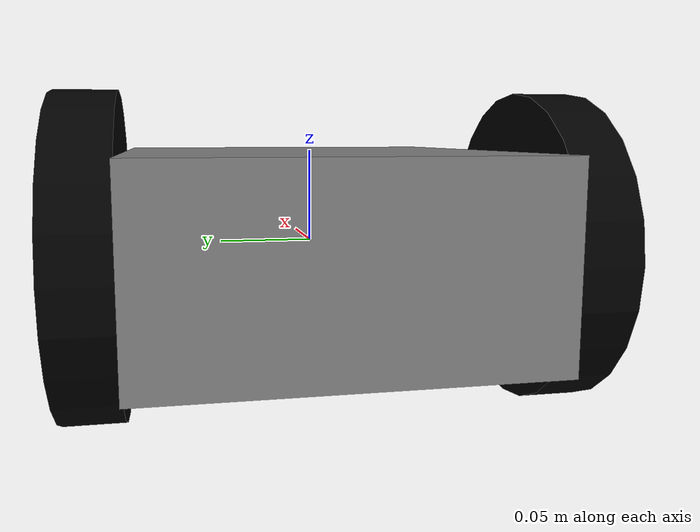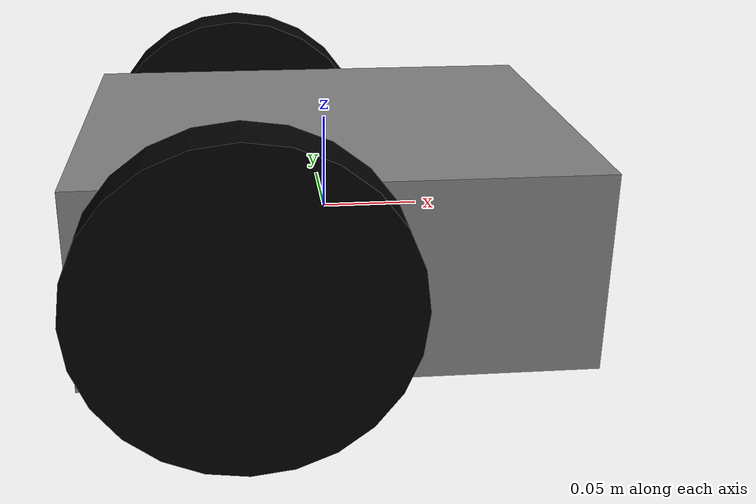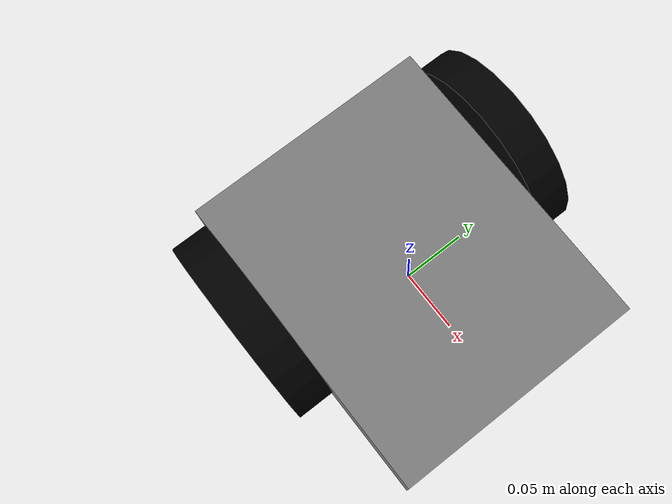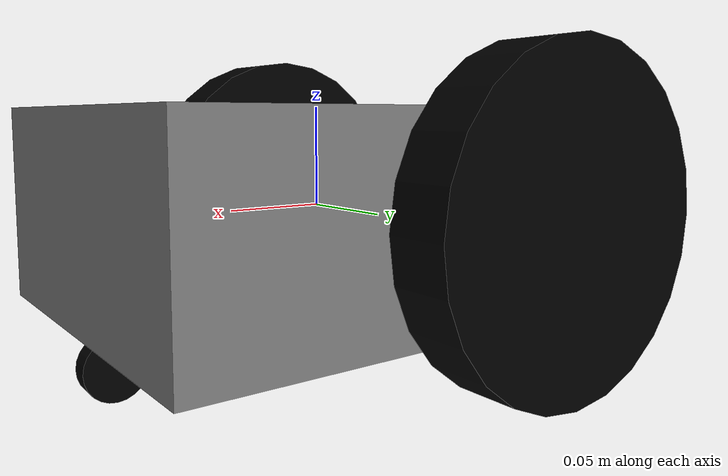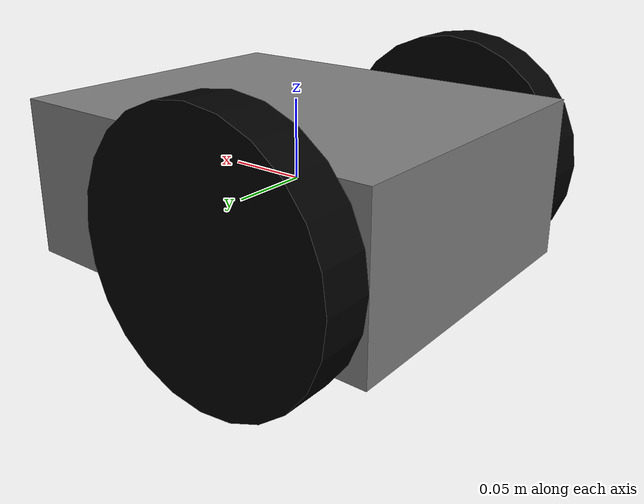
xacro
<?xml version="1.0"?>
<robot xmlns:xacro="http://www.ros.org/wiki/xacro" name="two_wheel_robot_with_caster">

  <!-- Parameter Definitions -->

  <xacro:property name="base_length"     value="0.25"/>
  <xacro:property name="base_width"      value="0.2"/>
  <xacro:property name="base_height"     value="0.1"/>

  <xacro:property name="wheel_radius"    value="0.08"/>
  <xacro:property name="wheel_width"     value="0.03"/>
  <xacro:property name="wheel_x"       value="${-base_length/2 + wheel_radius}"/> <!-- Align the edge of base_link with the edge of the caster -->
  <xacro:property name="wheel_y"       value="${base_width/2 + wheel_width/2}"/> <!-- Position the wheel directly beside base_link -->
  <xacro:property name="wheel_z"       value="0.0"/> <!-- Position the wheel directly above base_link -->

  <xacro:property name="caster_radius"   value="${(wheel_radius - base_height/2)/2}"/> <!-- Fit snugly in the gap below base_link -->
  <xacro:property name="caster_width"   value="0.01"/>
  <xacro:property name="caster_x" value="${base_length/2 - caster_radius}"/> <!-- Align the edge of base_link with the edge of the caster -->
  <xacro:property name="caster_y" value="0"/>
  <xacro:property name="caster_z" value="${- base_height/2 - caster_radius}"/>  <!-- Fit snugly in the gap below base_link -->

  <!-- Material Definitions -->
  <material name="gray">
    <color rgba="0.5 0.5 0.5 1.0"/>
  </material>
  <material name="black">
    <color rgba="0.0 0.0 0.0 1.0"/>
  </material>
  <material name="red">
    <color rgba="1.0 0.0 0.0 1.0"/>
  </material>

  <!-- Link Definitions -->

  <!-- Base Link -->
  <link name="base_link">
    <visual>
      <geometry>
        <box size="${base_length} ${base_width} ${base_height}"/>
      </geometry>
      <material name="gray"/>
    </visual>
    <collision>
      <geometry>
        <box size="${base_length} ${base_width} ${base_height}"/>
      </geometry>
    </collision>
    <inertial>
      <mass value="0.5"/>
      <origin xyz="0 0 ${-base_height/2}" rpy="0 0 0"/>
      <inertia ixx="0.001" ixy="0.0" ixz="0.0"
               iyy="0.001" iyz="0.0"
               izz="0.001"/>
    </inertial>
  </link>

  <!-- Left Wheel Link -->
  <link name="left_wheel_link">
    <visual>
      <origin xyz="0 0 0" rpy="-1.5708 0 0"/>
      <geometry>
        <cylinder length="${wheel_width}" radius="${wheel_radius}"/>
      </geometry>
      <material name="black"/>
    </visual>
    <collision>
      <origin xyz="0 0 0" rpy="-1.5708 0 0"/>
      <geometry>
        <cylinder length="${wheel_width}" radius="${wheel_radius}"/>
      </geometry>
    </collision>
    <inertial>
      <mass value="0.001"/>
      <origin xyz="0 0 0" rpy="0 0 0"/>
      <inertia ixx="1.1175580e-05" ixy="-4.2369783e-11" ixz="-5.9381719e-09" iyy="1.1192413e-05" iyz="-1.4400107e-11" izz="2.0712558e-05" />
    </inertial>
  </link>

  <!-- Right Wheel Link -->
  <link name="right_wheel_link">
    <visual>
      <origin xyz="0 0 0" rpy="1.5708 0 0"/>
      <geometry>
        <cylinder length="${wheel_width}" radius="${wheel_radius}"/>
      </geometry>
      <material name="black"/>
    </visual>
    <collision>
      <origin xyz="0 0 0" rpy="1.5708 0 0"/>
      <geometry>
        <cylinder length="${wheel_width}" radius="${wheel_radius}"/>
      </geometry>
    </collision>
    <inertial>
      <mass value="0.001"/>
      <origin xyz="0 0 0" rpy="0 0 0"/>
      <inertia ixx="1.1175580e-05" ixy="-4.2369783e-11" ixz="-5.9381719e-09" iyy="1.1192413e-05" iyz="-1.4400107e-11" izz="2.0712558e-05" />
    </inertial>
  </link>

  <!-- Caster Link -->
  <link name="caster_wheel_link">
    <visual>
      <origin xyz="0 0 0" rpy="-1.5708 0 0"/>
      <geometry>
        <cylinder length="${caster_width}" radius="${caster_radius}"/>
      </geometry>
      <material name="black"/>
    </visual>
    <collision>
      <origin xyz="0 0 0" rpy="-1.5708 0 0"/>
      <geometry>
        <cylinder length="${caster_width}" radius="${caster_radius}"/>
      </geometry>
    </collision>
    <inertial>
      <mass value="0.001"/>
      <origin xyz="0 0 0" rpy="0 0 0"/>
      <inertia ixx="0.001" ixy="0.0" ixz="0.0" iyy="0.001" iyz="0.0" izz="0.001" />
    </inertial>
  </link>

  <!-- Joint Definitions -->

  <!-- Left Wheel Joint -->
  <joint name="left_wheel_joint" type="continuous">
    <parent link="base_link"/>
    <child  link="left_wheel_link"/>
    <origin xyz="${wheel_x} ${wheel_y} ${wheel_z}" rpy="0 0 0"/>
    <axis   xyz="0 1 0"/>
  </joint>

  <!-- Right Wheel Joint -->
  <joint name="right_wheel_joint" type="continuous">
    <parent link="base_link"/>
    <child  link="right_wheel_link"/>
    <origin xyz="${wheel_x} ${-wheel_y} ${wheel_z}" rpy="0 0 0"/>
    <axis   xyz="0 1 0"/>
  </joint>

  <!-- Caster Joint -->
  <joint name="caster_wheel_joint" type="continuous">
    <parent link="base_link"/>
    <child  link="caster_wheel_link"/>
    <origin xyz="${caster_x} ${caster_y} ${caster_z}" rpy="0 0 0"/>
    <axis   xyz="0 1 0"/>
  </joint>

  <!-- Gazebo Plugins -->
  <gazebo>
    <plugin filename="gz-sim-diff-drive-system" name="gz::sim::systems::DiffDrive">
      <topic>/cmd_vel</topic>
      <left_joint>left_wheel_joint</left_joint>
      <right_joint>right_wheel_joint</right_joint>
      <wheel_separation>${base_width+wheel_width}</wheel_separation>
      <wheel_radius>${wheel_radius}</wheel_radius>
      <odom_topic>odom</odom_topic>
      <tf_topic>tf</tf_topic>
      <frame_id>odom</frame_id>
      <child_frame_id>base_link</child_frame_id>
      <odom_publish_frequency>50</odom_publish_frequency>
    </plugin>
    <plugin filename="gz-sim-joint-state-publisher-system" name="gz::sim::systems::JointStatePublisher">
      <topic>joint_states</topic>
      <joint_name>left_wheel_joint</joint_name>
      <joint_name>right_wheel_joint</joint_name>
    </plugin>
  </gazebo>

</robot>
